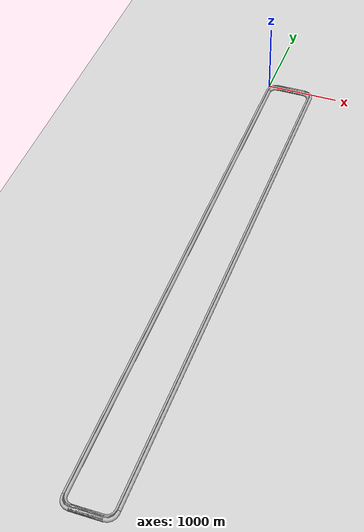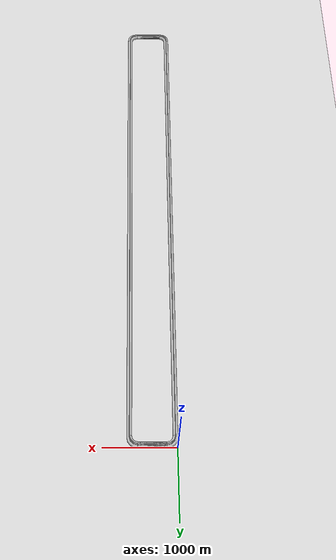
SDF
<sdf version="1.7">
 <world name="default">
  <light name="sun" type="directional">
   <pose>0 0 10 0 -0 0</pose>
   <diffuse>0.8 0.8 0.8 1</diffuse>
   <specular>0.2 0.2 0.2 1</specular>
   <attenuation>
    <range>1000</range>
    <constant>0.9</constant>
    <linear>0.01</linear>
    <quadratic>0.001</quadratic>
   </attenuation>
   <direction>-0.5 0.1 -0.9</direction>
   <spot><inner_angle>0</inner_angle><outer_angle>0</outer_angle><falloff>0</falloff></spot>
  </light>
  <model name="ground_plane">
   <static>1</static>
   <link name="link">
    <collision name="collision">
     <geometry><plane><normal>0 0 1</normal><size>100 100</size></plane></geometry>
     <surface><friction><ode><mu>100</mu><mu2>50</mu2></ode></friction></surface>
    </collision>
    <visual name="visual">
     <cast_shadows>0</cast_shadows>
     <geometry><plane><normal>0 0 1</normal><size>100 100</size></plane></geometry>
     <material>
      <script><uri>file://media/materials/scripts/gazebo.material</uri><name>Gazebo/Grey</name></script>
     </material>
    </visual>
   </link>
  </model>
  <gravity>0 0 -9.8</gravity>
  <magnetic_field>6e-06 2.3e-05 -4.2e-05</magnetic_field>
  <atmosphere type="adiabatic"/>
  <physics type="ode">
   <max_step_size>0.001</max_step_size>
   <real_time_factor>1</real_time_factor>
   <real_time_update_rate>1000</real_time_update_rate>
  </physics>
  <scene><ambient>0.4 0.4 0.4 1</ambient><background>0.7 0.7 0.7 1</background><shadows>1</shadows></scene>
  <spherical_coordinates>
   <surface_model>EARTH_WGS84</surface_model>
   <latitude_deg>0</latitude_deg>
   <longitude_deg>0</longitude_deg>
   <elevation>0</elevation>
   <heading_deg>0</heading_deg>
  </spherical_coordinates>
  <model name="asphalt_plane">
   <static>1</static>
   <link name="link">
    <collision name="collision"><geometry><box><size>20 20 0.1</size></box></geometry></collision>
    <visual name="visual">
     <cast_shadows>0</cast_shadows>
     <geometry><box><size>20 20 0.1</size></box></geometry>
     <material>
      <script>
       <uri>model://asphalt_plane/materials/scripts</uri>
       <uri>model://asphalt_plane/materials/textures</uri>
       <name>vrc/asphalt</name>
      </script>
     </material>
    </visual>
   </link>
   <pose>-0.089672 0.059574 0 0 -0 0</pose>
  </model>
  <light name="user_directional_light_0" type="directional">
   <pose>-5.63054 -11.2657 1 0 -0 0</pose>
   <diffuse>0.5 0.5 0.5 1</diffuse>
   <specular>0.1 0.1 0.1 1</specular>
   <direction>0.1 0.1 -0.9</direction>
   <attenuation>
    <range>20</range>
    <constant>0.5</constant>
    <linear>0.01</linear>
    <quadratic>0.001</quadratic>
   </attenuation>
   <spot><inner_angle>0</inner_angle><outer_angle>0</outer_angle><falloff>0</falloff></spot>
  </light>
  <light name="user_directional_light_1" type="directional">
   <pose>10.4762 9.60881 1 0 -0 0</pose>
   <diffuse>0.5 0.5 0.5 1</diffuse>
   <specular>0.1 0.1 0.1 1</specular>
   <direction>0.1 0.1 -0.9</direction>
   <attenuation>
    <range>20</range>
    <constant>0.5</constant>
    <linear>0.01</linear>
    <quadratic>0.001</quadratic>
   </attenuation>
   <spot><inner_angle>0</inner_angle><outer_angle>0</outer_angle><falloff>0</falloff></spot>
  </light>
  <audio><device>default</device></audio>
  <model name="piperail">
   <static>1</static>
   <link name="link">
    <visual name="visual">
     <geometry><mesh><scale>1 1 1</scale><uri>model://piperail/meshes/piperail.STL</uri></mesh></geometry>
    </visual>
   </link>
   <pose>0 -13 0.05 1.57 -0 0</pose>
  </model>
  <model name="piperail_clone">
   <static>1</static>
   <link name="link">
    <visual name="visual">
     <geometry><mesh><scale>1 1 1</scale><uri>model://piperail/meshes/piperail.STL</uri></mesh></geometry>
    </visual>
   </link>
   <pose>1.5 -13 0.05 1.57 -0 0</pose>
  </model>
  <model name="piperail_clone_0">
   <static>1</static>
   <link name="link">
    <visual name="visual">
     <geometry><mesh><scale>1 1 1</scale><uri>model://piperail/meshes/piperail.STL</uri></mesh></geometry>
    </visual>
   </link>
   <pose>3 -13 0.05 1.57 -0 0</pose>
  </model>
  <model name="piperail_clone_1">
   <static>1</static>
   <link name="link">
    <visual name="visual">
     <geometry><mesh><scale>1 1 1</scale><uri>model://piperail/meshes/piperail.STL</uri></mesh></geometry>
    </visual>
   </link>
   <pose>4.5 -13 0.05 1.57 -0 0</pose>
  </model>
  <model name="piperail_clone_2">
   <static>1</static>
   <link name="link">
    <visual name="visual">
     <geometry><mesh><scale>1 1 1</scale><uri>model://piperail/meshes/piperail.STL</uri></mesh></geometry>
    </visual>
   </link>
   <pose>6 -13 0.05 1.57 -0 0</pose>
  </model>
  <model name="piperail_clone_3">
   <static>1</static>
   <link name="link">
    <visual name="visual">
     <geometry><mesh><scale>1 1 1</scale><uri>model://piperail/meshes/piperail.STL</uri></mesh></geometry>
    </visual>
   </link>
   <pose>-1.5 -13 0.05 1.57 -0 0</pose>
  </model>
  <model name="piperail_clone_4">
   <static>1</static>
   <link name="link">
    <visual name="visual">
     <geometry><mesh><scale>1 1 1</scale><uri>model://piperail/meshes/piperail.STL</uri></mesh></geometry>
    </visual>
   </link>
   <pose>-3 -13 0.05 1.57 -0 0</pose>
  </model>
  <model name="piperail_clone_5">
   <static>1</static>
   <link name="link">
    <visual name="visual">
     <geometry><mesh><scale>1 1 1</scale><uri>model://piperail/meshes/piperail.STL</uri></mesh></geometry>
    </visual>
   </link>
   <pose>-4.5 -13 0.05 1.57 -0 0</pose>
  </model>
  <model name="piperail_clone_6">
   <static>1</static>
   <link name="link">
    <visual name="visual">
     <geometry><mesh><scale>1 1 1</scale><uri>model://piperail/meshes/piperail.STL</uri></mesh></geometry>
    </visual>
   </link>
   <pose>-4.5 13 0.05 1.57 -0 0</pose>
  </model>
  <model name="piperail_clone_7">
   <static>1</static>
   <link name="link">
    <visual name="visual">
     <geometry><mesh><scale>1 1 1</scale><uri>model://piperail/meshes/piperail.STL</uri></mesh></geometry>
    </visual>
   </link>
   <pose>-3 13 0.05 1.57 -0 0</pose>
  </model>
  <model name="piperail_clone_8">
   <static>1</static>
   <link name="link">
    <visual name="visual">
     <geometry><mesh><scale>1 1 1</scale><uri>model://piperail/meshes/piperail.STL</uri></mesh></geometry>
    </visual>
   </link>
   <pose>-1.5 13 0.05 1.57 -0 0</pose>
  </model>
  <model name="piperail_clone_9">
   <static>1</static>
   <link name="link">
    <visual name="visual">
     <geometry><mesh><scale>1 1 1</scale><uri>model://piperail/meshes/piperail.STL</uri></mesh></geometry>
    </visual>
   </link>
   <pose>0 13 0.05 1.57 -0 0</pose>
  </model>
  <model name="piperail_clone_10">
   <static>1</static>
   <link name="link">
    <visual name="visual">
     <geometry><mesh><scale>1 1 1</scale><uri>model://piperail/meshes/piperail.STL</uri></mesh></geometry>
    </visual>
   </link>
   <pose>1.5 13 0.05 1.57 -0 0</pose>
  </model>
  <model name="piperail_clone_11">
   <static>1</static>
   <link name="link">
    <visual name="visual">
     <geometry><mesh><scale>1 1 1</scale><uri>model://piperail/meshes/piperail.STL</uri></mesh></geometry>
    </visual>
   </link>
   <pose>3 13 0.05 1.57 -0 0</pose>
  </model>
  <model name="piperail_clone_12">
   <static>1</static>
   <link name="link">
    <collision name="collision">
     <geometry><mesh><scale>1 1 1</scale><uri>model://piperail/meshes/piperail.STL</uri></mesh></geometry>
    </collision>
    <visual name="visual">
     <geometry><mesh><scale>1 1 1</scale><uri>model://piperail/meshes/piperail.STL</uri></mesh></geometry>
    </visual>
   </link>
   <pose>4.5 13 0.05 1.57 -0 0</pose>
  </model>
  <model name="piperail_clone_13">
   <static>1</static>
   <link name="link">
    <collision name="collision">
     <geometry><mesh><scale>1 1 1</scale><uri>model://piperail/meshes/piperail.STL</uri></mesh></geometry>
    </collision>
    <visual name="visual">
     <geometry><mesh><scale>1 1 1</scale><uri>model://piperail/meshes/piperail.STL</uri></mesh></geometry>
    </visual>
   </link>
   <pose>6 13 0.05 1.57 -0 0</pose>
  </model>
  <model name="plant_0">
   <static>1</static>
   <link name="link">
    <visual name="visual">
     <geometry><mesh><scale>0.01 0.01 0.01</scale><uri>model://plant/meshes/plant.obj</uri></mesh></geometry>
    </visual>
   </link>
   <pose>5.2075 -2.45671 0.001474 1.57 -0 0</pose>
  </model>
  <model name="plant_0_clone">
   <static>1</static>
   <link name="link">
    <visual name="visual">
     <geometry><mesh><scale>0.01 0.01 0.01</scale><uri>model://plant/meshes/plant.obj</uri></mesh></geometry>
    </visual>
   </link>
   <pose>2.32422 -2.78676 0.001474 1.57 -0 0</pose>
  </model>
 </world>
</sdf>
